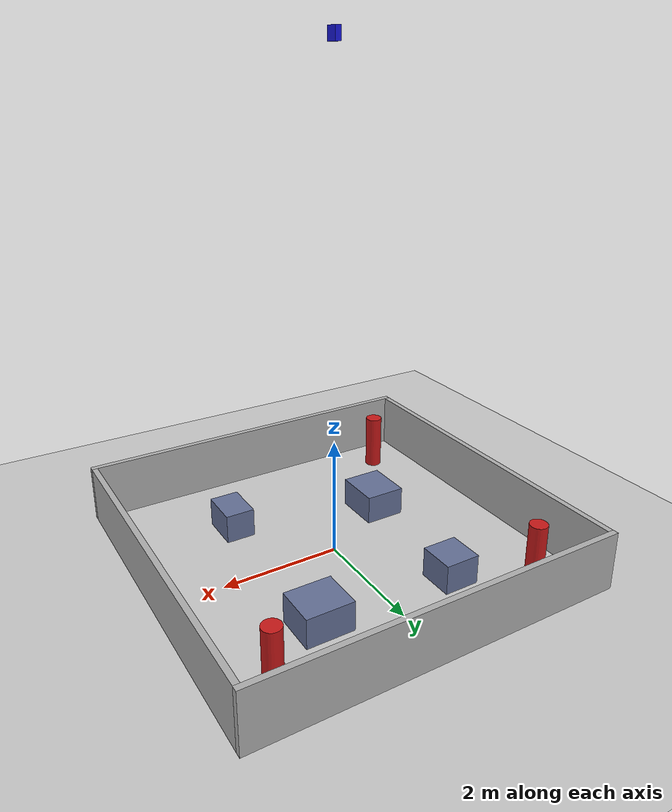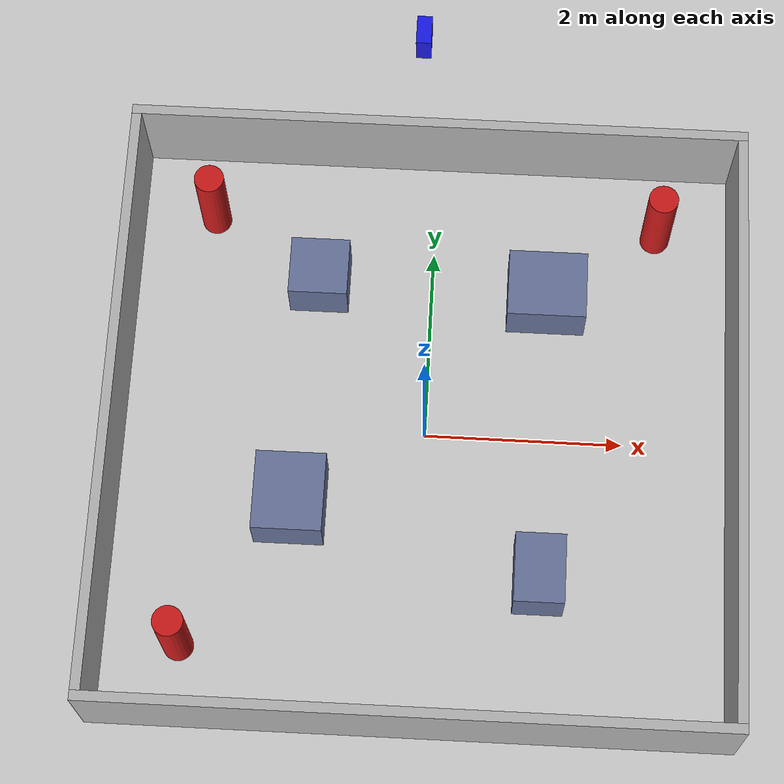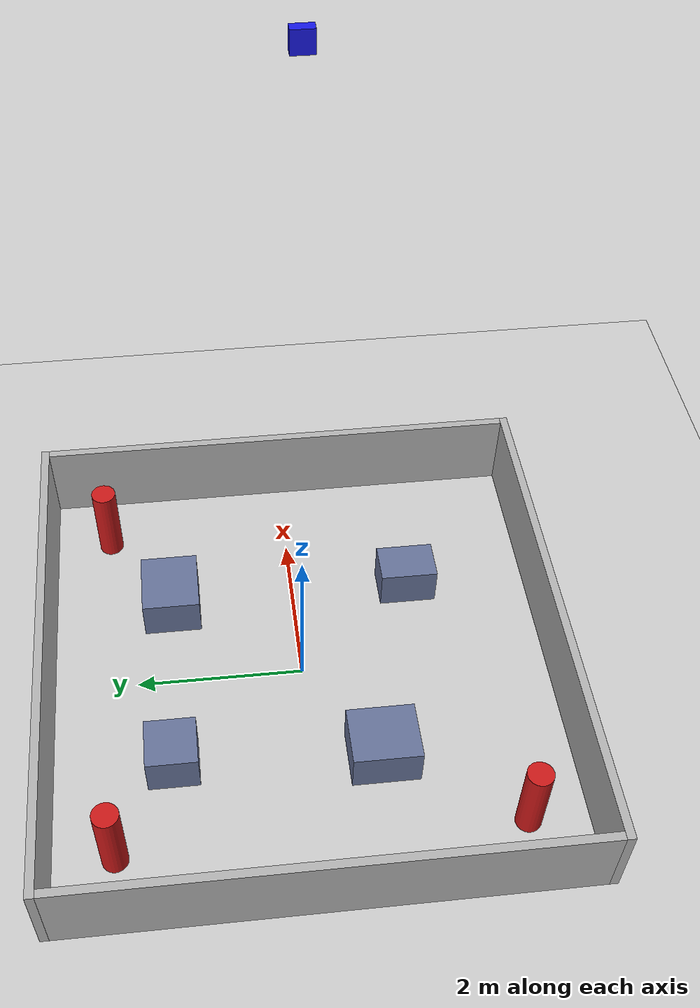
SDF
<?xml version="1.0" ?>
<sdf version="1.6">
  <world name="arena01">
    <include><uri>model://sun</uri></include>
    <include><uri>model://ground_plane</uri></include>

    <physics type="ode">
      <max_step_size>0.001</max_step_size>
      <real_time_factor>1.0</real_time_factor>
      <real_time_update_rate>1000</real_time_update_rate>
    </physics>

    <scene>
      <ambient>0.6 0.6 0.6 1</ambient>
      <shadows>false</shadows>
    </scene>

    <model name="wall_north">
      <static>true</static>
      <pose>0.0000 3.0500 0.5000 0 0 0</pose>
      <link name="link">
        <collision name="c">
          <geometry><box><size>6.3000 0.1000 1.0000</size></box></geometry>
        </collision>
        <visual name="v">
          <geometry><box><size>6.3000 0.1000 1.0000</size></box></geometry>
          <material>
            <ambient>0.7 0.7 0.7 1</ambient>
            <diffuse>0.7 0.7 0.7 1</diffuse>
          </material>
        </visual>
      </link>
    </model>
    <model name="wall_south">
      <static>true</static>
      <pose>0.0000 -3.0500 0.5000 0 0 0</pose>
      <link name="link">
        <collision name="c">
          <geometry><box><size>6.3000 0.1000 1.0000</size></box></geometry>
        </collision>
        <visual name="v">
          <geometry><box><size>6.3000 0.1000 1.0000</size></box></geometry>
          <material>
            <ambient>0.7 0.7 0.7 1</ambient>
            <diffuse>0.7 0.7 0.7 1</diffuse>
          </material>
        </visual>
      </link>
    </model>
    <model name="wall_east">
      <static>true</static>
      <pose>3.1000 0.0000 0.5000 0 0 0</pose>
      <link name="link">
        <collision name="c">
          <geometry><box><size>0.1000 6.0000 1.0000</size></box></geometry>
        </collision>
        <visual name="v">
          <geometry><box><size>0.1000 6.0000 1.0000</size></box></geometry>
          <material>
            <ambient>0.7 0.7 0.7 1</ambient>
            <diffuse>0.7 0.7 0.7 1</diffuse>
          </material>
        </visual>
      </link>
    </model>
    <model name="wall_west">
      <static>true</static>
      <pose>-3.1000 0.0000 0.5000 0 0 0</pose>
      <link name="link">
        <collision name="c">
          <geometry><box><size>0.1000 6.0000 1.0000</size></box></geometry>
        </collision>
        <visual name="v">
          <geometry><box><size>0.1000 6.0000 1.0000</size></box></geometry>
          <material>
            <ambient>0.7 0.7 0.7 1</ambient>
            <diffuse>0.7 0.7 0.7 1</diffuse>
          </material>
        </visual>
      </link>
    </model>
    <model name="obstacle_1">
      <static>true</static>
      <pose>-1.1600 1.6200 0.2500 0 0 0</pose>
      <link name="link">
        <collision name="c">
          <geometry><box><size>0.6000 0.6000 0.5000</size></box></geometry>
        </collision>
        <visual name="v">
          <geometry><box><size>0.6000 0.6000 0.5000</size></box></geometry>
          <material>
            <ambient>0.4 0.45 0.6 1</ambient>
            <diffuse>0.4 0.45 0.6 1</diffuse>
          </material>
        </visual>
      </link>
    </model>
    <model name="obstacle_2">
      <static>true</static>
      <pose>1.1800 1.5400 0.2500 0 0 0</pose>
      <link name="link">
        <collision name="c">
          <geometry><box><size>0.8000 0.7000 0.5000</size></box></geometry>
        </collision>
        <visual name="v">
          <geometry><box><size>0.8000 0.7000 0.5000</size></box></geometry>
          <material>
            <ambient>0.4 0.45 0.6 1</ambient>
            <diffuse>0.4 0.45 0.6 1</diffuse>
          </material>
        </visual>
      </link>
    </model>
    <model name="obstacle_3">
      <static>true</static>
      <pose>-1.3000 -0.8000 0.2500 0 0 0</pose>
      <link name="link">
        <collision name="c">
          <geometry><box><size>0.7000 0.8000 0.5000</size></box></geometry>
        </collision>
        <visual name="v">
          <geometry><box><size>0.7000 0.8000 0.5000</size></box></geometry>
          <material>
            <ambient>0.4 0.45 0.6 1</ambient>
            <diffuse>0.4 0.45 0.6 1</diffuse>
          </material>
        </visual>
      </link>
    </model>
    <model name="obstacle_4">
      <static>true</static>
      <pose>1.2000 -1.4600 0.2500 0 0 0</pose>
      <link name="link">
        <collision name="c">
          <geometry><box><size>0.5000 0.7000 0.5000</size></box></geometry>
        </collision>
        <visual name="v">
          <geometry><box><size>0.5000 0.7000 0.5000</size></box></geometry>
          <material>
            <ambient>0.4 0.45 0.6 1</ambient>
            <diffuse>0.4 0.45 0.6 1</diffuse>
          </material>
        </visual>
      </link>
    </model>
    <model name="target_spartina">
      <static>true</static>
      <pose>-2.3000 2.3000 0.5000 0 0 0</pose>
      <link name="link">
        <collision name="c">
          <geometry><cylinder><radius>0.150</radius><length>1.000</length></cylinder></geometry>
        </collision>
        <visual name="v">
          <geometry><cylinder><radius>0.150</radius><length>1.000</length></cylinder></geometry>
          <material>
            <ambient>0.8 0.1 0.1 1</ambient>
            <diffuse>0.8 0.1 0.1 1</diffuse>
          </material>
        </visual>
      </link>
    </model>
    <model name="target_spartina_2">
      <static>true</static>
      <pose>2.3000 2.3000 0.5000 0 0 0</pose>
      <link name="link">
        <collision name="c">
          <geometry><cylinder><radius>0.150</radius><length>1.000</length></cylinder></geometry>
        </collision>
        <visual name="v">
          <geometry><cylinder><radius>0.150</radius><length>1.000</length></cylinder></geometry>
          <material>
            <ambient>0.8 0.1 0.1 1</ambient>
            <diffuse>0.8 0.1 0.1 1</diffuse>
          </material>
        </visual>
      </link>
    </model>
    <model name="target_spartina_3">
      <static>true</static>
      <pose>-2.3000 -2.3000 0.5000 0 0 0</pose>
      <link name="link">
        <collision name="c">
          <geometry><cylinder><radius>0.150</radius><length>1.000</length></cylinder></geometry>
        </collision>
        <visual name="v">
          <geometry><cylinder><radius>0.150</radius><length>1.000</length></cylinder></geometry>
          <material>
            <ambient>0.8 0.1 0.1 1</ambient>
            <diffuse>0.8 0.1 0.1 1</diffuse>
          </material>
        </visual>
      </link>
    </model>

    <model name="drone_camera">
      <static>true</static>
      <pose>0 0 8 0 1.5708 0</pose>
      <link name="camera_link">
        <visual name="visual">
          <geometry><box><size>0.2 0.2 0.1</size></box></geometry>
          <material>
            <ambient>0.1 0.1 0.8 1</ambient>
            <diffuse>0.1 0.1 0.9 1</diffuse>
          </material>
        </visual>
        <sensor type="camera" name="drone_camera_sensor">
          <update_rate>10</update_rate>
          <always_on>true</always_on>
          <camera>
            <horizontal_fov>1.047</horizontal_fov>
            <image><width>640</width><height>480</height><format>R8G8B8</format></image>
            <clip><near>0.1</near><far>100</far></clip>
          </camera>
          <plugin name="drone_camera_controller" filename="libgazebo_ros_camera.so">
            <camera_name>drone</camera_name>
            <frame_name>drone_camera_optical</frame_name>
          </plugin>
        </sensor>
      </link>
    </model>

    <plugin name="gazebo_ros_state" filename="libgazebo_ros_state.so">
      <ros>
        <namespace>/gazebo</namespace>
      </ros>
      <update_rate>50.0</update_rate>
    </plugin>

  </world>
</sdf>
